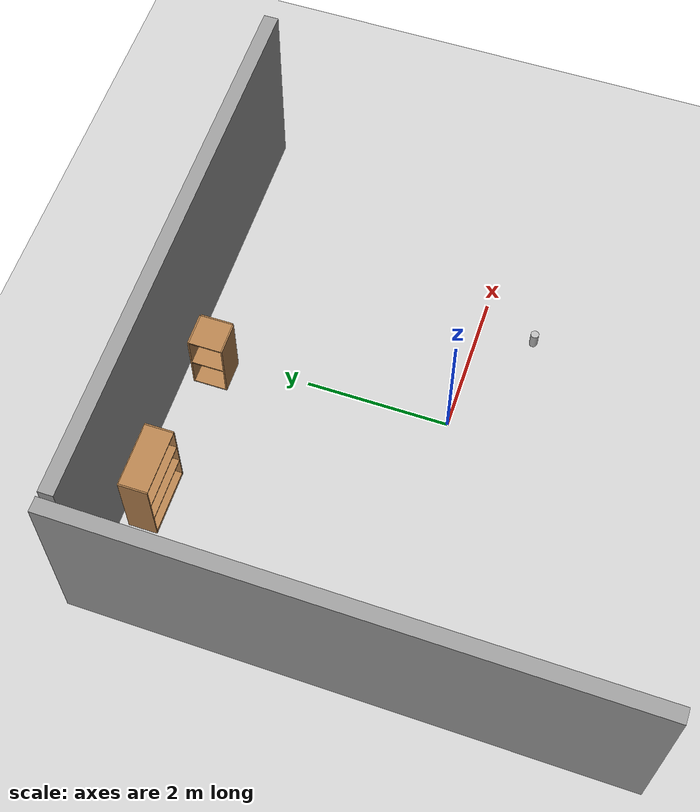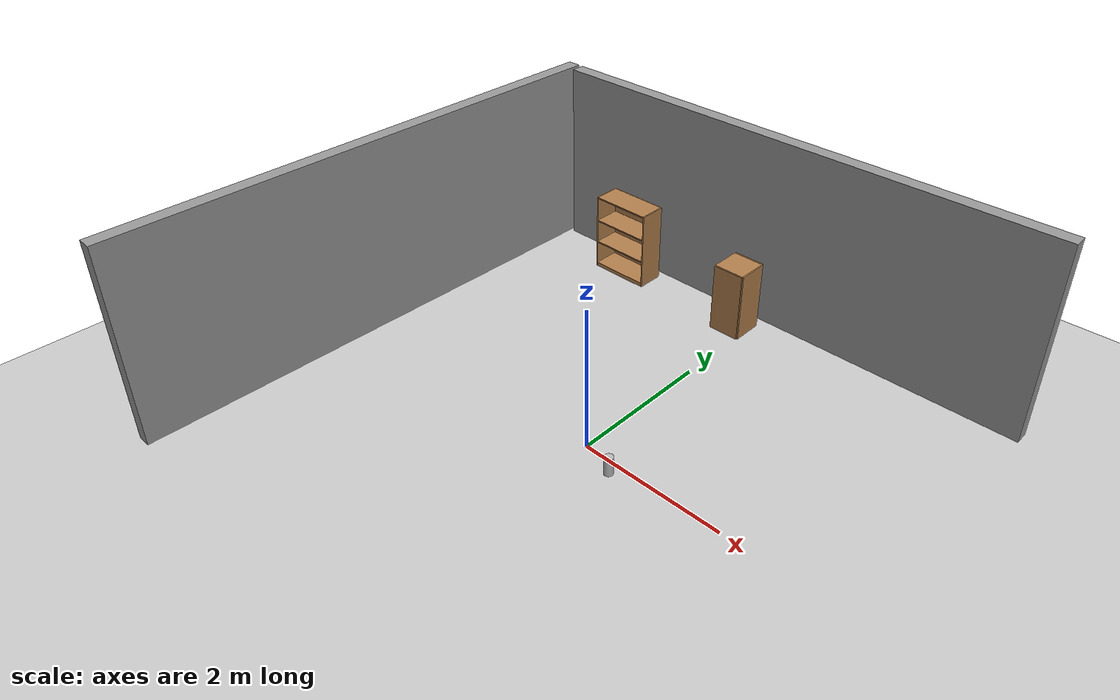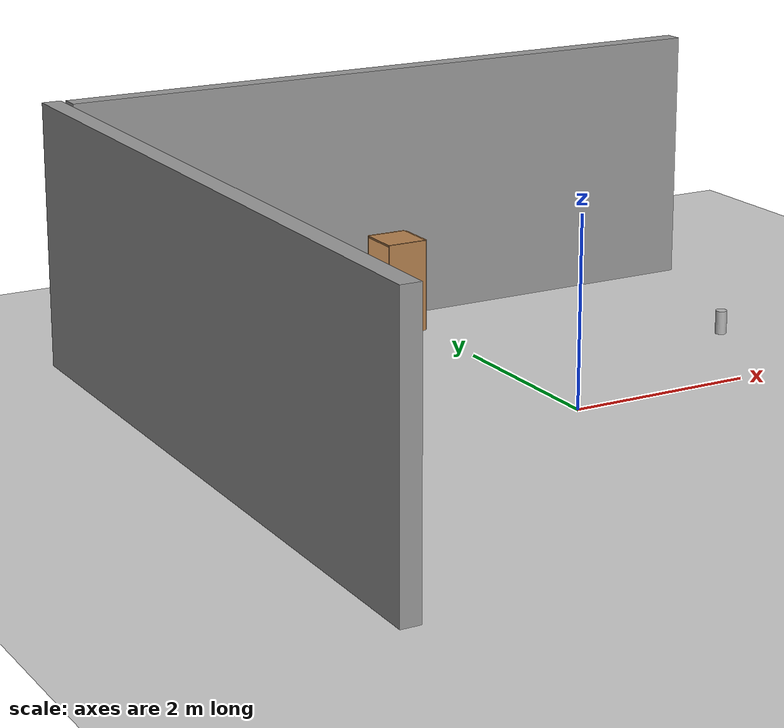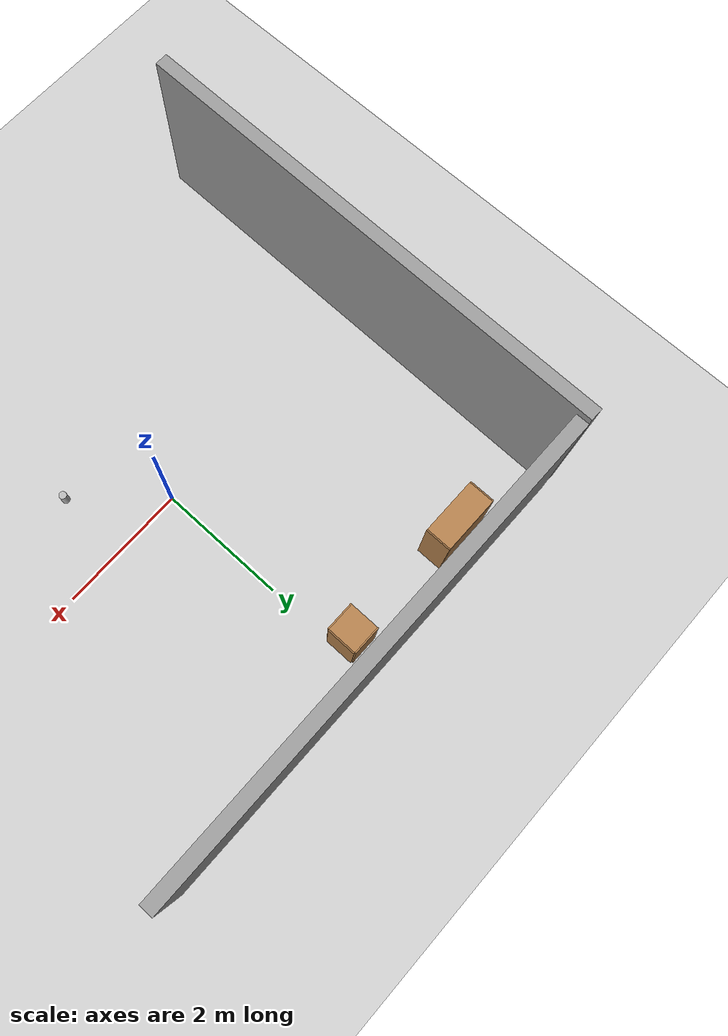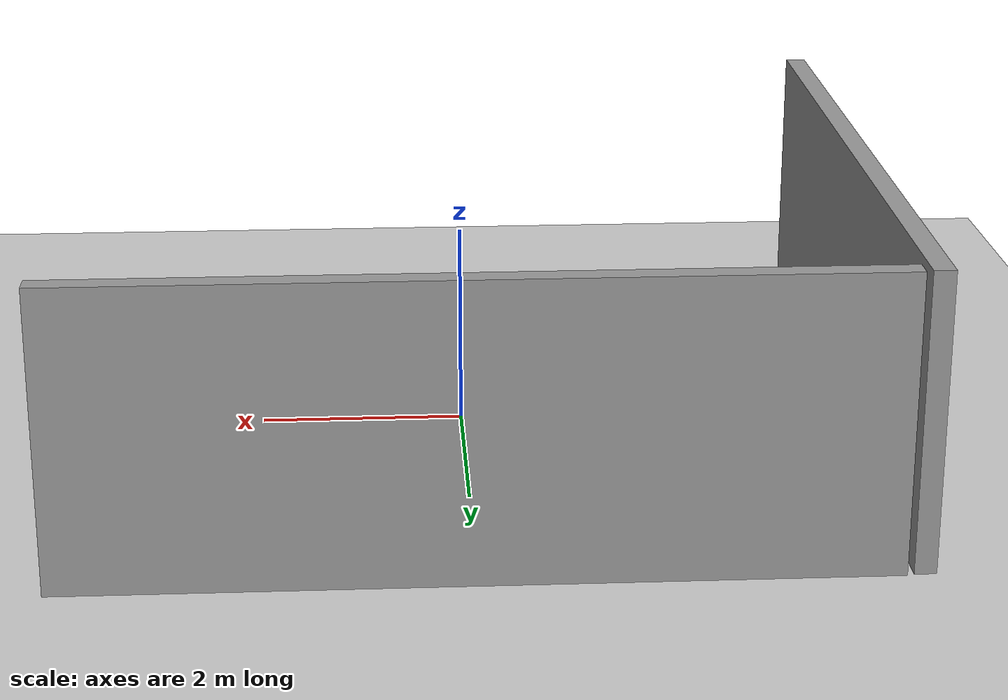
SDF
<sdf version="1.7">
 <world name="default">
  <light name="sun" type="directional">
   <pose>0 0 10 0 -0 0</pose>
   <diffuse>0.8 0.8 0.8 1</diffuse>
   <specular>0.2 0.2 0.2 1</specular>
   <attenuation>
    <range>1000</range>
    <constant>0.9</constant>
    <linear>0.01</linear>
    <quadratic>0.001</quadratic>
   </attenuation>
   <direction>-0.5 0.1 -0.9</direction>
   <spot><inner_angle>0</inner_angle><outer_angle>0</outer_angle><falloff>0</falloff></spot>
  </light>
  <model name="ground_plane">
   <static>1</static>
   <link name="link">
    <collision name="collision">
     <geometry><plane><normal>0 0 1</normal><size>100 100</size></plane></geometry>
     <surface><friction><ode><mu>100</mu><mu2>50</mu2></ode></friction></surface>
    </collision>
    <visual name="visual">
     <cast_shadows>0</cast_shadows>
     <geometry><plane><normal>0 0 1</normal><size>100 100</size></plane></geometry>
     <material>
      <script><uri>file://media/materials/scripts/gazebo.material</uri><name>Gazebo/Grey</name></script>
     </material>
    </visual>
   </link>
  </model>
  <gravity>0 0 -9.8</gravity>
  <magnetic_field>6e-06 2.3e-05 -4.2e-05</magnetic_field>
  <atmosphere type="adiabatic"/>
  <physics type="ode">
   <max_step_size>0.001</max_step_size>
   <real_time_factor>1</real_time_factor>
   <real_time_update_rate>1000</real_time_update_rate>
  </physics>
  <scene><ambient>0.4 0.4 0.4 1</ambient><background>0.7 0.7 0.7 1</background><shadows>1</shadows></scene>
  <audio><device>default</device></audio>
  <spherical_coordinates>
   <surface_model>EARTH_WGS84</surface_model>
   <latitude_deg>0</latitude_deg>
   <longitude_deg>0</longitude_deg>
   <elevation>0</elevation>
   <heading_deg>0</heading_deg>
  </spherical_coordinates>
  <model name="grey_wall">
   <static>1</static>
   <link name="link">
    <pose>0 0 1.4 0 -0 0</pose>
    <collision name="collision"><geometry><box><size>7.5 0.2 2.8</size></box></geometry></collision>
    <visual name="visual">
     <cast_shadows>0</cast_shadows>
     <geometry><box><size>7.5 0.2 2.8</size></box></geometry>
     <material>
      <script>
       <uri>model://grey_wall/materials/scripts</uri>
       <uri>model://grey_wall/materials/textures</uri>
       <name>vrc/grey_wall</name>
      </script>
     </material>
    </visual>
   </link>
   <pose>0.004709 3.76579 0 0 -0 0</pose>
  </model>
  <model name="grey_wall_0">
   <static>1</static>
   <link name="link">
    <pose>0 0 1.4 0 -0 0</pose>
    <collision name="collision"><geometry><box><size>7.5 0.2 2.8</size></box></geometry></collision>
    <visual name="visual">
     <cast_shadows>0</cast_shadows>
     <geometry><box><size>7.5 0.2 2.8</size></box></geometry>
     <material>
      <script>
       <uri>model://grey_wall/materials/scripts</uri>
       <uri>model://grey_wall/materials/textures</uri>
       <name>vrc/grey_wall</name>
      </script>
     </material>
    </visual>
    <enable_wind>1</enable_wind>
   </link>
   <pose>-3.93959 0.106853 0.00572 0 -0 1.56154</pose>
  </model>
  <model name="bookshelf">
   <static>1</static>
   <link name="link">
    <inertial><mass>1</mass></inertial>
    <collision name="back">
     <pose>0 0.005 0.6 0 -0 0</pose>
     <geometry><box><size>0.9 0.01 1.2</size></box></geometry>
    </collision>
    <visual name="visual1">
     <pose>0 0.005 0.6 0 -0 0</pose>
     <geometry><box><size>0.9 0.01 1.2</size></box></geometry>
     <material>
      <script><uri>file://media/materials/scripts/gazebo.material</uri><name>Gazebo/Wood</name></script>
     </material>
    </visual>
    <collision name="left_side">
     <pose>0.45 -0.195 0.6 0 -0 0</pose>
     <geometry><box><size>0.02 0.4 1.2</size></box></geometry>
    </collision>
    <visual name="visual2">
     <pose>0.45 -0.195 0.6 0 -0 0</pose>
     <geometry><box><size>0.02 0.4 1.2</size></box></geometry>
     <material>
      <script><uri>file://media/materials/scripts/gazebo.material</uri><name>Gazebo/Wood</name></script>
     </material>
    </visual>
    <collision name="right_side">
     <pose>-0.45 -0.195 0.6 0 -0 0</pose>
     <geometry><box><size>0.02 0.4 1.2</size></box></geometry>
    </collision>
    <visual name="visual3">
     <pose>-0.45 -0.195 0.6 0 -0 0</pose>
     <geometry><box><size>0.02 0.4 1.2</size></box></geometry>
     <material>
      <script><uri>file://media/materials/scripts/gazebo.material</uri><name>Gazebo/Wood</name></script>
     </material>
    </visual>
    <collision name="bottom">
     <pose>0 -0.195 0.03 0 -0 0</pose>
     <geometry><box><size>0.88 0.4 0.06</size></box></geometry>
    </collision>
    <visual name="visual4">
     <pose>0 -0.195 0.03 0 -0 0</pose>
     <geometry><box><size>0.88 0.4 0.06</size></box></geometry>
     <material>
      <script><uri>file://media/materials/scripts/gazebo.material</uri><name>Gazebo/Wood</name></script>
     </material>
    </visual>
    <collision name="top">
     <pose>0 -0.195 1.19 0 -0 0</pose>
     <geometry><box><size>0.88 0.4 0.02</size></box></geometry>
    </collision>
    <visual name="visual5">
     <pose>0 -0.195 1.19 0 -0 0</pose>
     <geometry><box><size>0.88 0.4 0.02</size></box></geometry>
     <material>
      <script><uri>file://media/materials/scripts/gazebo.material</uri><name>Gazebo/Wood</name></script>
     </material>
    </visual>
    <collision name="low_shelf">
     <pose>0 -0.195 0.43 0 -0 0</pose>
     <geometry><box><size>0.88 0.4 0.02</size></box></geometry>
    </collision>
    <visual name="visual6">
     <pose>0 -0.195 0.43 0 -0 0</pose>
     <geometry><box><size>0.88 0.4 0.02</size></box></geometry>
     <material>
      <script><uri>file://media/materials/scripts/gazebo.material</uri><name>Gazebo/Wood</name></script>
     </material>
    </visual>
    <collision name="high_shelf">
     <pose>0 -0.195 0.8 0 -0 0</pose>
     <geometry><box><size>0.88 0.4 0.02</size></box></geometry>
    </collision>
    <visual name="visual7">
     <pose>0 -0.195 0.8 0 -0 0</pose>
     <geometry><box><size>0.88 0.4 0.02</size></box></geometry>
     <material>
      <script><uri>file://media/materials/scripts/gazebo.material</uri><name>Gazebo/Wood</name></script>
     </material>
    </visual>
   </link>
   <pose>-2.28207 3.52865 0 0 -0 0</pose>
  </model>
  <model name="cabinet">
   <static>1</static>
   <link name="cabinet_bottom_plate">
    <inertial>
     <pose>0 0 -1 0 -0 0</pose>
     <inertia><ixx>2.05</ixx><ixy>0</ixy><ixz>0</ixz><iyy>2.05</iyy><iyz>0</iyz><izz>2.05</izz></inertia>
     <mass>25</mass>
    </inertial>
    <collision name="cabinet_bottom_plate_geom">
     <pose>0 0 0.01 0 -0 0</pose>
     <geometry><box><size>0.45 0.45 0.02</size></box></geometry>
    </collision>
    <visual name="cabinet_bottom_plate_geom_visual">
     <pose>0 0 0.01 0 -0 0</pose>
     <geometry><box><size>0.45 0.45 0.02</size></box></geometry>
     <material>
      <script><uri>file://media/materials/scripts/gazebo.material</uri><name>Gazebo/Wood</name></script>
     </material>
    </visual>
    <collision name="cabinet_bottom_plate_geom_cabinet_back_plate">
     <pose>0.235 0 0.51 0 -0 0</pose>
     <geometry><box><size>0.02 0.45 1.02</size></box></geometry>
    </collision>
    <visual name="cabinet_bottom_plate_geom_cabinet_back_plate_visual">
     <pose>0.235 0 0.51 0 -0 0</pose>
     <geometry><box><size>0.02 0.45 1.02</size></box></geometry>
     <material>
      <script><uri>file://media/materials/scripts/gazebo.material</uri><name>Gazebo/Wood</name></script>
     </material>
    </visual>
    <collision name="cabinet_bottom_plate_geom_cabinet_left_plate">
     <pose>0 0.235 0.51 0 -0 0</pose>
     <geometry><box><size>0.45 0.02 1.02</size></box></geometry>
    </collision>
    <visual name="cabinet_bottom_plate_geom_cabinet_left_plate_visual">
     <pose>0 0.235 0.51 0 -0 0</pose>
     <geometry><box><size>0.45 0.02 1.02</size></box></geometry>
     <material>
      <script><uri>file://media/materials/scripts/gazebo.material</uri><name>Gazebo/Wood</name></script>
     </material>
    </visual>
    <collision name="cabinet_bottom_plate_geom_cabinet_middle_plate">
     <pose>0 0 0.51 0 -0 0</pose>
     <geometry><box><size>0.45 0.45 0.02</size></box></geometry>
    </collision>
    <visual name="cabinet_bottom_plate_geom_cabinet_middle_plate_visual">
     <pose>0 0 0.51 0 -0 0</pose>
     <geometry><box><size>0.45 0.45 0.02</size></box></geometry>
     <material>
      <script><uri>file://media/materials/scripts/gazebo.material</uri><name>Gazebo/Wood</name></script>
     </material>
    </visual>
    <collision name="cabinet_bottom_plate_geom_cabinet_right_plate">
     <pose>0 -0.235 0.51 0 -0 0</pose>
     <geometry><box><size>0.45 0.02 1.02</size></box></geometry>
    </collision>
    <visual name="cabinet_bottom_plate_geom_cabinet_right_plate_visual">
     <pose>0 -0.235 0.51 0 -0 0</pose>
     <geometry><box><size>0.45 0.02 1.02</size></box></geometry>
     <material>
      <script><uri>file://media/materials/scripts/gazebo.material</uri><name>Gazebo/Wood</name></script>
     </material>
    </visual>
    <collision name="cabinet_bottom_plate_geom_cabinet_top_plate">
     <pose>0 0 1.01 0 -0 0</pose>
     <geometry><box><size>0.45 0.45 0.02</size></box></geometry>
    </collision>
    <visual name="cabinet_bottom_plate_geom_cabinet_top_plate_visual">
     <pose>0 0 1.01 0 -0 0</pose>
     <geometry><box><size>0.45 0.45 0.02</size></box></geometry>
     <material>
      <script><uri>file://media/materials/scripts/gazebo.material</uri><name>Gazebo/Wood</name></script>
     </material>
    </visual>
   </link>
   <pose>-0.222741 3.26923 0 0 -0 0</pose>
  </model>
  <model name="beer">
   <link name="link">
    <pose>0 0 0.115 0 -0 0</pose>
    <inertial>
     <mass>0.39</mass>
     <inertia><ixx>0.00058</ixx><ixy>0</ixy><ixz>0</ixz><iyy>0.00058</iyy><iyz>0</iyz><izz>0.00019</izz></inertia>
    </inertial>
    <collision name="collision">
     <geometry><cylinder><radius>0.055</radius><length>0.23</length></cylinder></geometry>
    </collision>
    <visual name="visual">
     <geometry><cylinder><radius>0.055</radius><length>0.23</length></cylinder></geometry>
     <material>
      <script>
       <uri>model://beer/materials/scripts</uri>
       <uri>model://beer/materials/textures</uri>
       <name>Beer/Diffuse</name>
      </script>
     </material>
    </visual>
   </link>
   <pose>1.08933 -0.82306 0.855187 -2.3e-05 2.3e-05 0.739833</pose>
  </model>
  <light name="user_point_light_0" type="point">
   <pose>-2.81401 -1.35753 1 0 -0 0</pose>
   <diffuse>0.5 0.5 0.5 1</diffuse>
   <specular>0.1 0.1 0.1 1</specular>
   <attenuation>
    <range>20</range>
    <constant>0.5</constant>
    <linear>0.01</linear>
    <quadratic>0.001</quadratic>
   </attenuation>
   <cast_shadows>0</cast_shadows>
   <direction>0 0 -1</direction>
   <spot><inner_angle>0</inner_angle><outer_angle>0</outer_angle><falloff>0</falloff></spot>
  </light>
 </world>
</sdf>
